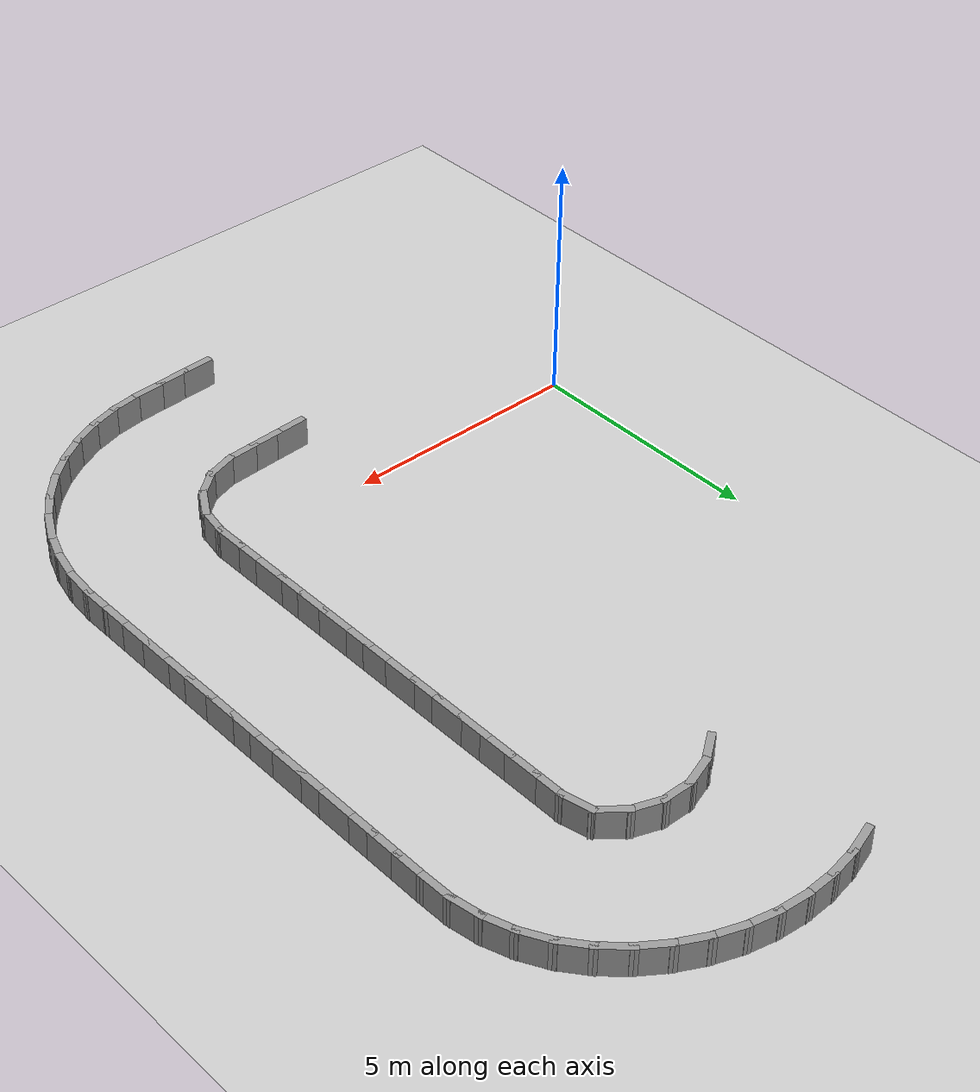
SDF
<sdf version="1.7">
 <world name="default">
  <model name="ground_plane">
   <static>1</static>
   <link name="link">
    <collision name="collision">
     <geometry><plane><normal>0 0 1</normal><size>100 100</size></plane></geometry>
     <surface><friction><ode><mu>100</mu><mu2>50</mu2></ode></friction></surface>
    </collision>
    <visual name="visual">
     <cast_shadows>0</cast_shadows>
     <geometry><plane><normal>0 0 1</normal><size>100 100</size></plane></geometry>
     <material>
      <script><uri>file://media/materials/scripts/gazebo.material</uri><name>Gazebo/Grey</name></script>
     </material>
    </visual>
   </link>
  </model>
  <model name="rand_turn_09">
   <link name="Wall_22">
    <collision name="Wall_22_Collision">
     <geometry><box><size>0.7500 0.1500 0.6000</size></box></geometry>
     <pose>0 0 0.3000 0 -0 0</pose>
    </collision>
    <visual name="Wall_22_Visual">
     <pose>0 0 0.3000 0 -0 0</pose>
     <geometry><box><size>0.7500 0.1500 0.6000</size></box></geometry>
     <material>
      <script><uri>file://media/materials/scripts/gazebo.material</uri><name>Gazebo/Grey</name></script>
      <ambient>1 1 1 1</ambient>
     </material>
    </visual>
    <pose>5.3822 -1.7798 0 0 -0 0.04657</pose>
   </link>
   <link name="Wall_23">
    <collision name="Wall_23_Collision">
     <geometry><box><size>0.7500 0.1500 0.6000</size></box></geometry>
     <pose>0 0 0.3000 0 -0 0</pose>
    </collision>
    <visual name="Wall_23_Visual">
     <pose>0 0 0.3000 0 -0 0</pose>
     <geometry><box><size>0.7500 0.1500 0.6000</size></box></geometry>
     <material>
      <script><uri>file://media/materials/scripts/gazebo.material</uri><name>Gazebo/Grey</name></script>
      <ambient>1 1 1 1</ambient>
     </material>
    </visual>
    <pose>5.9816 -1.7519 0 0 -0 0.04657</pose>
   </link>
   <link name="Wall_24">
    <collision name="Wall_24_Collision">
     <geometry><box><size>0.7499 0.1500 0.6000</size></box></geometry>
     <pose>0 0 0.3000 0 -0 0</pose>
    </collision>
    <visual name="Wall_24_Visual">
     <pose>0 0 0.3000 0 -0 0</pose>
     <geometry><box><size>0.7499 0.1500 0.6000</size></box></geometry>
     <material>
      <script><uri>file://media/materials/scripts/gazebo.material</uri><name>Gazebo/Grey</name></script>
      <ambient>1 1 1 1</ambient>
     </material>
    </visual>
    <pose>6.5808 -1.7224 0 0 -0 0.05183</pose>
   </link>
   <link name="Wall_25">
    <collision name="Wall_25_Collision">
     <geometry><box><size>0.7467 0.1500 0.6000</size></box></geometry>
     <pose>0 0 0.3000 0 -0 0</pose>
    </collision>
    <visual name="Wall_25_Visual">
     <pose>0 0 0.3000 0 -0 0</pose>
     <geometry><box><size>0.7467 0.1500 0.6000</size></box></geometry>
     <material>
      <script><uri>file://media/materials/scripts/gazebo.material</uri><name>Gazebo/Grey</name></script>
      <ambient>1 1 1 1</ambient>
     </material>
    </visual>
    <pose>7.1662 -1.6213 0 0 -0 0.29063</pose>
   </link>
   <link name="Wall_26">
    <collision name="Wall_26_Collision">
     <geometry><box><size>0.7466 0.1500 0.6000</size></box></geometry>
     <pose>0 0 0.3000 0 -0 0</pose>
    </collision>
    <visual name="Wall_26_Visual">
     <pose>0 0 0.3000 0 -0 0</pose>
     <geometry><box><size>0.7466 0.1500 0.6000</size></box></geometry>
     <material>
      <script><uri>file://media/materials/scripts/gazebo.material</uri><name>Gazebo/Grey</name></script>
      <ambient>1 1 1 1</ambient>
     </material>
    </visual>
    <pose>7.6882 -1.3536 0 0 -0 0.65714</pose>
   </link>
   <link name="Wall_27">
    <collision name="Wall_27_Collision">
     <geometry><box><size>0.7466 0.1500 0.6000</size></box></geometry>
     <pose>0 0 0.3000 0 -0 0</pose>
    </collision>
    <visual name="Wall_27_Visual">
     <pose>0 0 0.3000 0 -0 0</pose>
     <geometry><box><size>0.7466 0.1500 0.6000</size></box></geometry>
     <material>
      <script><uri>file://media/materials/scripts/gazebo.material</uri><name>Gazebo/Grey</name></script>
      <ambient>1 1 1 1</ambient>
     </material>
    </visual>
    <pose>8.0797 -0.9167 0 0 -0 1.02326</pose>
   </link>
   <link name="Wall_28">
    <collision name="Wall_28_Collision">
     <geometry><box><size>0.7466 0.1500 0.6000</size></box></geometry>
     <pose>0 0 0.3000 0 -0 0</pose>
    </collision>
    <visual name="Wall_28_Visual">
     <pose>0 0 0.3000 0 -0 0</pose>
     <geometry><box><size>0.7466 0.1500 0.6000</size></box></geometry>
     <material>
      <script><uri>file://media/materials/scripts/gazebo.material</uri><name>Gazebo/Grey</name></script>
      <ambient>1 1 1 1</ambient>
     </material>
    </visual>
    <pose>8.2887 -0.3686 0 0 -0 1.38976</pose>
   </link>
   <link name="Wall_29">
    <collision name="Wall_29_Collision">
     <geometry><box><size>0.7500 0.1500 0.6000</size></box></geometry>
     <pose>0 0 0.3000 0 -0 0</pose>
    </collision>
    <visual name="Wall_29_Visual">
     <pose>0 0 0.3000 0 -0 0</pose>
     <geometry><box><size>0.7500 0.1500 0.6000</size></box></geometry>
     <material>
      <script><uri>file://media/materials/scripts/gazebo.material</uri><name>Gazebo/Grey</name></script>
      <ambient>1 1 1 1</ambient>
     </material>
    </visual>
    <pose>8.3423 0.2248 0 0 -0 1.57105</pose>
   </link>
   <link name="Wall_30">
    <collision name="Wall_30_Collision">
     <geometry><box><size>0.7500 0.1500 0.6000</size></box></geometry>
     <pose>0 0 0.3000 0 -0 0</pose>
    </collision>
    <visual name="Wall_30_Visual">
     <pose>0 0 0.3000 0 -0 0</pose>
     <geometry><box><size>0.7500 0.1500 0.6000</size></box></geometry>
     <material>
      <script><uri>file://media/materials/scripts/gazebo.material</uri><name>Gazebo/Grey</name></script>
      <ambient>1 1 1 1</ambient>
     </material>
    </visual>
    <pose>8.3422 0.8248 0 0 -0 1.57086</pose>
   </link>
   <link name="Wall_31">
    <collision name="Wall_31_Collision">
     <geometry><box><size>0.7500 0.1500 0.6000</size></box></geometry>
     <pose>0 0 0.3000 0 -0 0</pose>
    </collision>
    <visual name="Wall_31_Visual">
     <pose>0 0 0.3000 0 -0 0</pose>
     <geometry><box><size>0.7500 0.1500 0.6000</size></box></geometry>
     <material>
      <script><uri>file://media/materials/scripts/gazebo.material</uri><name>Gazebo/Grey</name></script>
      <ambient>1 1 1 1</ambient>
     </material>
    </visual>
    <pose>8.3422 1.4248 0 0 -0 1.57086</pose>
   </link>
   <link name="Wall_32">
    <collision name="Wall_32_Collision">
     <geometry><box><size>0.7500 0.1500 0.6000</size></box></geometry>
     <pose>0 0 0.3000 0 -0 0</pose>
    </collision>
    <visual name="Wall_32_Visual">
     <pose>0 0 0.3000 0 -0 0</pose>
     <geometry><box><size>0.7500 0.1500 0.6000</size></box></geometry>
     <material>
      <script><uri>file://media/materials/scripts/gazebo.material</uri><name>Gazebo/Grey</name></script>
      <ambient>1 1 1 1</ambient>
     </material>
    </visual>
    <pose>8.3421 2.0248 0 0 -0 1.57086</pose>
   </link>
   <link name="Wall_33">
    <collision name="Wall_33_Collision">
     <geometry><box><size>0.7500 0.1500 0.6000</size></box></geometry>
     <pose>0 0 0.3000 0 -0 0</pose>
    </collision>
    <visual name="Wall_33_Visual">
     <pose>0 0 0.3000 0 -0 0</pose>
     <geometry><box><size>0.7500 0.1500 0.6000</size></box></geometry>
     <material>
      <script><uri>file://media/materials/scripts/gazebo.material</uri><name>Gazebo/Grey</name></script>
      <ambient>1 1 1 1</ambient>
     </material>
    </visual>
    <pose>8.3421 2.6248 0 0 -0 1.57086</pose>
   </link>
   <link name="Wall_34">
    <collision name="Wall_34_Collision">
     <geometry><box><size>0.7500 0.1500 0.6000</size></box></geometry>
     <pose>0 0 0.3000 0 -0 0</pose>
    </collision>
    <visual name="Wall_34_Visual">
     <pose>0 0 0.3000 0 -0 0</pose>
     <geometry><box><size>0.7500 0.1500 0.6000</size></box></geometry>
     <material>
      <script><uri>file://media/materials/scripts/gazebo.material</uri><name>Gazebo/Grey</name></script>
      <ambient>1 1 1 1</ambient>
     </material>
    </visual>
    <pose>8.3421 3.2248 0 0 -0 1.57086</pose>
   </link>
   <link name="Wall_35">
    <collision name="Wall_35_Collision">
     <geometry><box><size>0.7500 0.1500 0.6000</size></box></geometry>
     <pose>0 0 0.3000 0 -0 0</pose>
    </collision>
    <visual name="Wall_35_Visual">
     <pose>0 0 0.3000 0 -0 0</pose>
     <geometry><box><size>0.7500 0.1500 0.6000</size></box></geometry>
     <material>
      <script><uri>file://media/materials/scripts/gazebo.material</uri><name>Gazebo/Grey</name></script>
      <ambient>1 1 1 1</ambient>
     </material>
    </visual>
    <pose>8.3420 3.8248 0 0 -0 1.57086</pose>
   </link>
   <link name="Wall_36">
    <collision name="Wall_36_Collision">
     <geometry><box><size>0.7500 0.1500 0.6000</size></box></geometry>
     <pose>0 0 0.3000 0 -0 0</pose>
    </collision>
    <visual name="Wall_36_Visual">
     <pose>0 0 0.3000 0 -0 0</pose>
     <geometry><box><size>0.7500 0.1500 0.6000</size></box></geometry>
     <material>
      <script><uri>file://media/materials/scripts/gazebo.material</uri><name>Gazebo/Grey</name></script>
      <ambient>1 1 1 1</ambient>
     </material>
    </visual>
    <pose>8.3420 4.4248 0 0 -0 1.57086</pose>
   </link>
   <link name="Wall_37">
    <collision name="Wall_37_Collision">
     <geometry><box><size>0.7500 0.1500 0.6000</size></box></geometry>
     <pose>0 0 0.3000 0 -0 0</pose>
    </collision>
    <visual name="Wall_37_Visual">
     <pose>0 0 0.3000 0 -0 0</pose>
     <geometry><box><size>0.7500 0.1500 0.6000</size></box></geometry>
     <material>
      <script><uri>file://media/materials/scripts/gazebo.material</uri><name>Gazebo/Grey</name></script>
      <ambient>1 1 1 1</ambient>
     </material>
    </visual>
    <pose>8.3420 5.0248 0 0 -0 1.57086</pose>
   </link>
   <link name="Wall_38">
    <collision name="Wall_38_Collision">
     <geometry><box><size>0.7500 0.1500 0.6000</size></box></geometry>
     <pose>0 0 0.3000 0 -0 0</pose>
    </collision>
    <visual name="Wall_38_Visual">
     <pose>0 0 0.3000 0 -0 0</pose>
     <geometry><box><size>0.7500 0.1500 0.6000</size></box></geometry>
     <material>
      <script><uri>file://media/materials/scripts/gazebo.material</uri><name>Gazebo/Grey</name></script>
      <ambient>1 1 1 1</ambient>
     </material>
    </visual>
    <pose>8.3419 5.6248 0 0 -0 1.57086</pose>
   </link>
   <link name="Wall_39">
    <collision name="Wall_39_Collision">
     <geometry><box><size>0.7500 0.1500 0.6000</size></box></geometry>
     <pose>0 0 0.3000 0 -0 0</pose>
    </collision>
    <visual name="Wall_39_Visual">
     <pose>0 0 0.3000 0 -0 0</pose>
     <geometry><box><size>0.7500 0.1500 0.6000</size></box></geometry>
     <material>
      <script><uri>file://media/materials/scripts/gazebo.material</uri><name>Gazebo/Grey</name></script>
      <ambient>1 1 1 1</ambient>
     </material>
    </visual>
    <pose>8.3419 6.2248 0 0 -0 1.57086</pose>
   </link>
   <link name="Wall_40">
    <collision name="Wall_40_Collision">
     <geometry><box><size>0.7500 0.1500 0.6000</size></box></geometry>
     <pose>0 0 0.3000 0 -0 0</pose>
    </collision>
    <visual name="Wall_40_Visual">
     <pose>0 0 0.3000 0 -0 0</pose>
     <geometry><box><size>0.7500 0.1500 0.6000</size></box></geometry>
     <material>
      <script><uri>file://media/materials/scripts/gazebo.material</uri><name>Gazebo/Grey</name></script>
      <ambient>1 1 1 1</ambient>
     </material>
    </visual>
    <pose>8.3418 6.8248 0 0 -0 1.57086</pose>
   </link>
   <link name="Wall_41">
    <collision name="Wall_41_Collision">
     <geometry><box><size>0.7500 0.1500 0.6000</size></box></geometry>
     <pose>0 0 0.3000 0 -0 0</pose>
    </collision>
    <visual name="Wall_41_Visual">
     <pose>0 0 0.3000 0 -0 0</pose>
     <geometry><box><size>0.7500 0.1500 0.6000</size></box></geometry>
     <material>
      <script><uri>file://media/materials/scripts/gazebo.material</uri><name>Gazebo/Grey</name></script>
      <ambient>1 1 1 1</ambient>
     </material>
    </visual>
    <pose>8.3418 7.4248 0 0 -0 1.57086</pose>
   </link>
   <link name="Wall_42">
    <collision name="Wall_42_Collision">
     <geometry><box><size>0.7500 0.1500 0.6000</size></box></geometry>
     <pose>0 0 0.3000 0 -0 0</pose>
    </collision>
    <visual name="Wall_42_Visual">
     <pose>0 0 0.3000 0 -0 0</pose>
     <geometry><box><size>0.7500 0.1500 0.6000</size></box></geometry>
     <material>
      <script><uri>file://media/materials/scripts/gazebo.material</uri><name>Gazebo/Grey</name></script>
      <ambient>1 1 1 1</ambient>
     </material>
    </visual>
    <pose>8.3418 8.0248 0 0 -0 1.57086</pose>
   </link>
   <link name="Wall_43">
    <collision name="Wall_43_Collision">
     <geometry><box><size>0.7500 0.1500 0.6000</size></box></geometry>
     <pose>0 0 0.3000 0 -0 0</pose>
    </collision>
    <visual name="Wall_43_Visual">
     <pose>0 0 0.3000 0 -0 0</pose>
     <geometry><box><size>0.7500 0.1500 0.6000</size></box></geometry>
     <material>
      <script><uri>file://media/materials/scripts/gazebo.material</uri><name>Gazebo/Grey</name></script>
      <ambient>1 1 1 1</ambient>
     </material>
    </visual>
    <pose>8.3417 8.6248 0 0 -0 1.57086</pose>
   </link>
   <link name="Wall_44">
    <collision name="Wall_44_Collision">
     <geometry><box><size>0.7390 0.1500 0.6000</size></box></geometry>
     <pose>0 0 0.3000 0 -0 0</pose>
    </collision>
    <visual name="Wall_44_Visual">
     <pose>0 0 0.3000 0 -0 0</pose>
     <geometry><box><size>0.7390 0.1500 0.6000</size></box></geometry>
     <material>
      <script><uri>file://media/materials/scripts/gazebo.material</uri><name>Gazebo/Grey</name></script>
      <ambient>1 1 1 1</ambient>
     </material>
    </visual>
    <pose>8.2764 9.2120 0 0 -0 1.79442</pose>
   </link>
   <link name="Wall_45">
    <collision name="Wall_45_Collision">
     <geometry><box><size>0.7448 0.1500 0.6000</size></box></geometry>
     <pose>0 0 0.3000 0 -0 0</pose>
    </collision>
    <visual name="Wall_45_Visual">
     <pose>0 0 0.3000 0 -0 0</pose>
     <geometry><box><size>0.7448 0.1500 0.6000</size></box></geometry>
     <material>
      <script><uri>file://media/materials/scripts/gazebo.material</uri><name>Gazebo/Grey</name></script>
      <ambient>1 1 1 1</ambient>
     </material>
    </visual>
    <pose>7.9837 9.6908 0 0 -0 2.44117</pose>
   </link>
   <link name="Wall_46">
    <collision name="Wall_46_Collision">
     <geometry><box><size>0.7472 0.1500 0.6000</size></box></geometry>
     <pose>0 0 0.3000 0 -0 0</pose>
    </collision>
    <visual name="Wall_46_Visual">
     <pose>0 0 0.3000 0 -0 0</pose>
     <geometry><box><size>0.7472 0.1500 0.6000</size></box></geometry>
     <material>
      <script><uri>file://media/materials/scripts/gazebo.material</uri><name>Gazebo/Grey</name></script>
      <ambient>1 1 1 1</ambient>
     </material>
    </visual>
    <pose>7.4751 9.9829 0 0 -0 2.79888</pose>
   </link>
   <link name="Wall_47">
    <collision name="Wall_47_Collision">
     <geometry><box><size>0.7472 0.1500 0.6000</size></box></geometry>
     <pose>0 0 0.3000 0 -0 0</pose>
    </collision>
    <visual name="Wall_47_Visual">
     <pose>0 0 0.3000 0 -0 0</pose>
     <geometry><box><size>0.7472 0.1500 0.6000</size></box></geometry>
     <material>
      <script><uri>file://media/materials/scripts/gazebo.material</uri><name>Gazebo/Grey</name></script>
      <ambient>1 1 1 1</ambient>
     </material>
    </visual>
    <pose>6.8953 10.0859 0 0 -0 3.13249</pose>
   </link>
   <link name="Wall_48">
    <collision name="Wall_48_Collision">
     <geometry><box><size>0.7472 0.1500 0.6000</size></box></geometry>
     <pose>0 0 0.3000 0 -0 0</pose>
    </collision>
    <visual name="Wall_48_Visual">
     <pose>0 0 0.3000 0 -0 0</pose>
     <geometry><box><size>0.7472 0.1500 0.6000</size></box></geometry>
     <material>
      <script><uri>file://media/materials/scripts/gazebo.material</uri><name>Gazebo/Grey</name></script>
      <ambient>1 1 1 1</ambient>
     </material>
    </visual>
    <pose>6.3138 9.9933 0 0 -0 -2.81664</pose>
   </link>
   <link name="Wall_49">
    <collision name="Wall_49_Collision">
     <geometry><box><size>0.7491 0.1500 0.6000</size></box></geometry>
     <pose>0 0 0.3000 0 -0 0</pose>
    </collision>
    <visual name="Wall_49_Visual">
     <pose>0 0 0.3000 0 -0 0</pose>
     <geometry><box><size>0.7491 0.1500 0.6000</size></box></geometry>
     <material>
      <script><uri>file://media/materials/scripts/gazebo.material</uri><name>Gazebo/Grey</name></script>
      <ambient>1 1 1 1</ambient>
     </material>
    </visual>
    <pose>5.7865 9.7246 0 0 -0 -2.52444</pose>
   </link>
   <link name="Wall_85">
    <collision name="Wall_85_Collision">
     <geometry><box><size>0.7500 0.1500 0.6000</size></box></geometry>
     <pose>0 0 0.3000 0 -0 0</pose>
    </collision>
    <visual name="Wall_85_Visual">
     <pose>0 0 0.3000 0 -0 0</pose>
     <geometry><box><size>0.7500 0.1500 0.6000</size></box></geometry>
     <material>
      <script><uri>file://media/materials/scripts/gazebo.material</uri><name>Gazebo/Grey</name></script>
      <ambient>1 1 1 1</ambient>
     </material>
    </visual>
    <pose>5.5142 -4.6118 0 0 -0 0.04657</pose>
   </link>
   <link name="Wall_86">
    <collision name="Wall_86_Collision">
     <geometry><box><size>0.7500 0.1500 0.6000</size></box></geometry>
     <pose>0 0 0.3000 0 -0 0</pose>
    </collision>
    <visual name="Wall_86_Visual">
     <pose>0 0 0.3000 0 -0 0</pose>
     <geometry><box><size>0.7500 0.1500 0.6000</size></box></geometry>
     <material>
      <script><uri>file://media/materials/scripts/gazebo.material</uri><name>Gazebo/Grey</name></script>
      <ambient>1 1 1 1</ambient>
     </material>
    </visual>
    <pose>6.1136 -4.5839 0 0 -0 0.04657</pose>
   </link>
   <link name="Wall_87">
    <collision name="Wall_87_Collision">
     <geometry><box><size>0.7500 0.1500 0.6000</size></box></geometry>
     <pose>0 0 0.3000 0 -0 0</pose>
    </collision>
    <visual name="Wall_87_Visual">
     <pose>0 0 0.3000 0 -0 0</pose>
     <geometry><box><size>0.7500 0.1500 0.6000</size></box></geometry>
     <material>
      <script><uri>file://media/materials/scripts/gazebo.material</uri><name>Gazebo/Grey</name></script>
      <ambient>1 1 1 1</ambient>
     </material>
    </visual>
    <pose>6.7129 -4.5552 0 0 -0 0.04922</pose>
   </link>
   <link name="Wall_88">
    <collision name="Wall_88_Collision">
     <geometry><box><size>0.7495 0.1500 0.6000</size></box></geometry>
     <pose>0 0 0.3000 0 -0 0</pose>
    </collision>
    <visual name="Wall_88_Visual">
     <pose>0 0 0.3000 0 -0 0</pose>
     <geometry><box><size>0.7495 0.1500 0.6000</size></box></geometry>
     <material>
      <script><uri>file://media/materials/scripts/gazebo.material</uri><name>Gazebo/Grey</name></script>
      <ambient>1 1 1 1</ambient>
     </material>
    </visual>
    <pose>7.3095 -4.4998 0 0 -0 0.13589</pose>
   </link>
   <link name="Wall_89">
    <collision name="Wall_89_Collision">
     <geometry><box><size>0.7495 0.1500 0.6000</size></box></geometry>
     <pose>0 0 0.3000 0 -0 0</pose>
    </collision>
    <visual name="Wall_89_Visual">
     <pose>0 0 0.3000 0 -0 0</pose>
     <geometry><box><size>0.7495 0.1500 0.6000</size></box></geometry>
     <material>
      <script><uri>file://media/materials/scripts/gazebo.material</uri><name>Gazebo/Grey</name></script>
      <ambient>1 1 1 1</ambient>
     </material>
    </visual>
    <pose>7.8954 -4.3793 0 0 -0 0.26986</pose>
   </link>
   <link name="Wall_90">
    <collision name="Wall_90_Collision">
     <geometry><box><size>0.7496 0.1500 0.6000</size></box></geometry>
     <pose>0 0 0.3000 0 -0 0</pose>
    </collision>
    <visual name="Wall_90_Visual">
     <pose>0 0 0.3000 0 -0 0</pose>
     <geometry><box><size>0.7496 0.1500 0.6000</size></box></geometry>
     <material>
      <script><uri>file://media/materials/scripts/gazebo.material</uri><name>Gazebo/Grey</name></script>
      <ambient>1 1 1 1</ambient>
     </material>
    </visual>
    <pose>8.4600 -4.1815 0 0 -0 0.40391</pose>
   </link>
   <link name="Wall_91">
    <collision name="Wall_91_Collision">
     <geometry><box><size>0.7496 0.1500 0.6000</size></box></geometry>
     <pose>0 0 0.3000 0 -0 0</pose>
    </collision>
    <visual name="Wall_91_Visual">
     <pose>0 0 0.3000 0 -0 0</pose>
     <geometry><box><size>0.7496 0.1500 0.6000</size></box></geometry>
     <material>
      <script><uri>file://media/materials/scripts/gazebo.material</uri><name>Gazebo/Grey</name></script>
      <ambient>1 1 1 1</ambient>
     </material>
    </visual>
    <pose>8.9930 -3.9100 0 0 -0 0.53859</pose>
   </link>
   <link name="Wall_92">
    <collision name="Wall_92_Collision">
     <geometry><box><size>0.7495 0.1500 0.6000</size></box></geometry>
     <pose>0 0 0.3000 0 -0 0</pose>
    </collision>
    <visual name="Wall_92_Visual">
     <pose>0 0 0.3000 0 -0 0</pose>
     <geometry><box><size>0.7495 0.1500 0.6000</size></box></geometry>
     <material>
      <script><uri>file://media/materials/scripts/gazebo.material</uri><name>Gazebo/Grey</name></script>
      <ambient>1 1 1 1</ambient>
     </material>
    </visual>
    <pose>9.4848 -3.5694 0 0 -0 0.67280</pose>
   </link>
   <link name="Wall_93">
    <collision name="Wall_93_Collision">
     <geometry><box><size>0.7495 0.1500 0.6000</size></box></geometry>
     <pose>0 0 0.3000 0 -0 0</pose>
    </collision>
    <visual name="Wall_93_Visual">
     <pose>0 0 0.3000 0 -0 0</pose>
     <geometry><box><size>0.7495 0.1500 0.6000</size></box></geometry>
     <material>
      <script><uri>file://media/materials/scripts/gazebo.material</uri><name>Gazebo/Grey</name></script>
      <ambient>1 1 1 1</ambient>
     </material>
    </visual>
    <pose>9.9266 -3.1661 0 0 -0 0.80685</pose>
   </link>
   <link name="Wall_94">
    <collision name="Wall_94_Collision">
     <geometry><box><size>0.7495 0.1500 0.6000</size></box></geometry>
     <pose>0 0 0.3000 0 -0 0</pose>
    </collision>
    <visual name="Wall_94_Visual">
     <pose>0 0 0.3000 0 -0 0</pose>
     <geometry><box><size>0.7495 0.1500 0.6000</size></box></geometry>
     <material>
      <script><uri>file://media/materials/scripts/gazebo.material</uri><name>Gazebo/Grey</name></script>
      <ambient>1 1 1 1</ambient>
     </material>
    </visual>
    <pose>10.3105 -2.7074 0 0 -0 0.94090</pose>
   </link>
   <link name="Wall_95">
    <collision name="Wall_95_Collision">
     <geometry><box><size>0.7495 0.1500 0.6000</size></box></geometry>
     <pose>0 0 0.3000 0 -0 0</pose>
    </collision>
    <visual name="Wall_95_Visual">
     <pose>0 0 0.3000 0 -0 0</pose>
     <geometry><box><size>0.7495 0.1500 0.6000</size></box></geometry>
     <material>
      <script><uri>file://media/materials/scripts/gazebo.material</uri><name>Gazebo/Grey</name></script>
      <ambient>1 1 1 1</ambient>
     </material>
    </visual>
    <pose>10.6297 -2.2016 0 0 -0 1.07495</pose>
   </link>
   <link name="Wall_96">
    <collision name="Wall_96_Collision">
     <geometry><box><size>0.7495 0.1500 0.6000</size></box></geometry>
     <pose>0 0 0.3000 0 -0 0</pose>
    </collision>
    <visual name="Wall_96_Visual">
     <pose>0 0 0.3000 0 -0 0</pose>
     <geometry><box><size>0.7495 0.1500 0.6000</size></box></geometry>
     <material>
      <script><uri>file://media/materials/scripts/gazebo.material</uri><name>Gazebo/Grey</name></script>
      <ambient>1 1 1 1</ambient>
     </material>
    </visual>
    <pose>10.8784 -1.6576 0 0 -0 1.20900</pose>
   </link>
   <link name="Wall_97">
    <collision name="Wall_97_Collision">
     <geometry><box><size>0.7495 0.1500 0.6000</size></box></geometry>
     <pose>0 0 0.3000 0 -0 0</pose>
    </collision>
    <visual name="Wall_97_Visual">
     <pose>0 0 0.3000 0 -0 0</pose>
     <geometry><box><size>0.7495 0.1500 0.6000</size></box></geometry>
     <material>
      <script><uri>file://media/materials/scripts/gazebo.material</uri><name>Gazebo/Grey</name></script>
      <ambient>1 1 1 1</ambient>
     </material>
    </visual>
    <pose>11.0522 -1.0852 0 0 -0 1.34305</pose>
   </link>
   <link name="Wall_98">
    <collision name="Wall_98_Collision">
     <geometry><box><size>0.7495 0.1500 0.6000</size></box></geometry>
     <pose>0 0 0.3000 0 -0 0</pose>
    </collision>
    <visual name="Wall_98_Visual">
     <pose>0 0 0.3000 0 -0 0</pose>
     <geometry><box><size>0.7495 0.1500 0.6000</size></box></geometry>
     <material>
      <script><uri>file://media/materials/scripts/gazebo.material</uri><name>Gazebo/Grey</name></script>
      <ambient>1 1 1 1</ambient>
     </material>
    </visual>
    <pose>11.1479 -0.4948 0 0 -0 1.47714</pose>
   </link>
   <link name="Wall_99">
    <collision name="Wall_99_Collision">
     <geometry><box><size>0.7500 0.1500 0.6000</size></box></geometry>
     <pose>0 0 0.3000 0 -0 0</pose>
    </collision>
    <visual name="Wall_99_Visual">
     <pose>0 0 0.3000 0 -0 0</pose>
     <geometry><box><size>0.7500 0.1500 0.6000</size></box></geometry>
     <material>
      <script><uri>file://media/materials/scripts/gazebo.material</uri><name>Gazebo/Grey</name></script>
      <ambient>1 1 1 1</ambient>
     </material>
    </visual>
    <pose>11.1767 0.1037 0 0 -0 1.56841</pose>
   </link>
   <link name="Wall_100">
    <collision name="Wall_100_Collision">
     <geometry><box><size>0.7500 0.1500 0.6000</size></box></geometry>
     <pose>0 0 0.3000 0 -0 0</pose>
    </collision>
    <visual name="Wall_100_Visual">
     <pose>0 0 0.3000 0 -0 0</pose>
     <geometry><box><size>0.7500 0.1500 0.6000</size></box></geometry>
     <material>
      <script><uri>file://media/materials/scripts/gazebo.material</uri><name>Gazebo/Grey</name></script>
      <ambient>1 1 1 1</ambient>
     </material>
    </visual>
    <pose>11.1773 0.7037 0 0 -0 1.57086</pose>
   </link>
   <link name="Wall_101">
    <collision name="Wall_101_Collision">
     <geometry><box><size>0.7500 0.1500 0.6000</size></box></geometry>
     <pose>0 0 0.3000 0 -0 0</pose>
    </collision>
    <visual name="Wall_101_Visual">
     <pose>0 0 0.3000 0 -0 0</pose>
     <geometry><box><size>0.7500 0.1500 0.6000</size></box></geometry>
     <material>
      <script><uri>file://media/materials/scripts/gazebo.material</uri><name>Gazebo/Grey</name></script>
      <ambient>1 1 1 1</ambient>
     </material>
    </visual>
    <pose>11.1773 1.3037 0 0 -0 1.57086</pose>
   </link>
   <link name="Wall_102">
    <collision name="Wall_102_Collision">
     <geometry><box><size>0.7500 0.1500 0.6000</size></box></geometry>
     <pose>0 0 0.3000 0 -0 0</pose>
    </collision>
    <visual name="Wall_102_Visual">
     <pose>0 0 0.3000 0 -0 0</pose>
     <geometry><box><size>0.7500 0.1500 0.6000</size></box></geometry>
     <material>
      <script><uri>file://media/materials/scripts/gazebo.material</uri><name>Gazebo/Grey</name></script>
      <ambient>1 1 1 1</ambient>
     </material>
    </visual>
    <pose>11.1773 1.9037 0 0 -0 1.57086</pose>
   </link>
   <link name="Wall_103">
    <collision name="Wall_103_Collision">
     <geometry><box><size>0.7500 0.1500 0.6000</size></box></geometry>
     <pose>0 0 0.3000 0 -0 0</pose>
    </collision>
    <visual name="Wall_103_Visual">
     <pose>0 0 0.3000 0 -0 0</pose>
     <geometry><box><size>0.7500 0.1500 0.6000</size></box></geometry>
     <material>
      <script><uri>file://media/materials/scripts/gazebo.material</uri><name>Gazebo/Grey</name></script>
      <ambient>1 1 1 1</ambient>
     </material>
    </visual>
    <pose>11.1772 2.5037 0 0 -0 1.57086</pose>
   </link>
   <link name="Wall_104">
    <collision name="Wall_104_Collision">
     <geometry><box><size>0.7500 0.1500 0.6000</size></box></geometry>
     <pose>0 0 0.3000 0 -0 0</pose>
    </collision>
    <visual name="Wall_104_Visual">
     <pose>0 0 0.3000 0 -0 0</pose>
     <geometry><box><size>0.7500 0.1500 0.6000</size></box></geometry>
     <material>
      <script><uri>file://media/materials/scripts/gazebo.material</uri><name>Gazebo/Grey</name></script>
      <ambient>1 1 1 1</ambient>
     </material>
    </visual>
    <pose>11.1772 3.1037 0 0 -0 1.57086</pose>
   </link>
   <link name="Wall_105">
    <collision name="Wall_105_Collision">
     <geometry><box><size>0.7500 0.1500 0.6000</size></box></geometry>
     <pose>0 0 0.3000 0 -0 0</pose>
    </collision>
    <visual name="Wall_105_Visual">
     <pose>0 0 0.3000 0 -0 0</pose>
     <geometry><box><size>0.7500 0.1500 0.6000</size></box></geometry>
     <material>
      <script><uri>file://media/materials/scripts/gazebo.material</uri><name>Gazebo/Grey</name></script>
      <ambient>1 1 1 1</ambient>
     </material>
    </visual>
    <pose>11.1772 3.7037 0 0 -0 1.57086</pose>
   </link>
   <link name="Wall_106">
    <collision name="Wall_106_Collision">
     <geometry><box><size>0.7500 0.1500 0.6000</size></box></geometry>
     <pose>0 0 0.3000 0 -0 0</pose>
    </collision>
    <visual name="Wall_106_Visual">
     <pose>0 0 0.3000 0 -0 0</pose>
     <geometry><box><size>0.7500 0.1500 0.6000</size></box></geometry>
     <material>
      <script><uri>file://media/materials/scripts/gazebo.material</uri><name>Gazebo/Grey</name></script>
      <ambient>1 1 1 1</ambient>
     </material>
    </visual>
    <pose>11.1771 4.3037 0 0 -0 1.57086</pose>
   </link>
   <link name="Wall_107">
    <collision name="Wall_107_Collision">
     <geometry><box><size>0.7500 0.1500 0.6000</size></box></geometry>
     <pose>0 0 0.3000 0 -0 0</pose>
    </collision>
    <visual name="Wall_107_Visual">
     <pose>0 0 0.3000 0 -0 0</pose>
     <geometry><box><size>0.7500 0.1500 0.6000</size></box></geometry>
     <material>
      <script><uri>file://media/materials/scripts/gazebo.material</uri><name>Gazebo/Grey</name></script>
      <ambient>1 1 1 1</ambient>
     </material>
    </visual>
    <pose>11.1771 4.9037 0 0 -0 1.57086</pose>
   </link>
   <link name="Wall_108">
    <collision name="Wall_108_Collision">
     <geometry><box><size>0.7500 0.1500 0.6000</size></box></geometry>
     <pose>0 0 0.3000 0 -0 0</pose>
    </collision>
    <visual name="Wall_108_Visual">
     <pose>0 0 0.3000 0 -0 0</pose>
     <geometry><box><size>0.7500 0.1500 0.6000</size></box></geometry>
     <material>
      <script><uri>file://media/materials/scripts/gazebo.material</uri><name>Gazebo/Grey</name></script>
      <ambient>1 1 1 1</ambient>
     </material>
    </visual>
    <pose>11.1771 5.5037 0 0 -0 1.57086</pose>
   </link>
   <link name="Wall_109">
    <collision name="Wall_109_Collision">
     <geometry><box><size>0.7500 0.1500 0.6000</size></box></geometry>
     <pose>0 0 0.3000 0 -0 0</pose>
    </collision>
    <visual name="Wall_109_Visual">
     <pose>0 0 0.3000 0 -0 0</pose>
     <geometry><box><size>0.7500 0.1500 0.6000</size></box></geometry>
     <material>
      <script><uri>file://media/materials/scripts/gazebo.material</uri><name>Gazebo/Grey</name></script>
      <ambient>1 1 1 1</ambient>
     </material>
    </visual>
    <pose>11.1770 6.1037 0 0 -0 1.57086</pose>
   </link>
   <link name="Wall_110">
    <collision name="Wall_110_Collision">
     <geometry><box><size>0.7500 0.1500 0.6000</size></box></geometry>
     <pose>0 0 0.3000 0 -0 0</pose>
    </collision>
    <visual name="Wall_110_Visual">
     <pose>0 0 0.3000 0 -0 0</pose>
     <geometry><box><size>0.7500 0.1500 0.6000</size></box></geometry>
     <material>
      <script><uri>file://media/materials/scripts/gazebo.material</uri><name>Gazebo/Grey</name></script>
      <ambient>1 1 1 1</ambient>
     </material>
    </visual>
    <pose>11.1770 6.7037 0 0 -0 1.57086</pose>
   </link>
   <link name="Wall_111">
    <collision name="Wall_111_Collision">
     <geometry><box><size>0.7500 0.1500 0.6000</size></box></geometry>
     <pose>0 0 0.3000 0 -0 0</pose>
    </collision>
    <visual name="Wall_111_Visual">
     <pose>0 0 0.3000 0 -0 0</pose>
     <geometry><box><size>0.7500 0.1500 0.6000</size></box></geometry>
     <material>
      <script><uri>file://media/materials/scripts/gazebo.material</uri><name>Gazebo/Grey</name></script>
      <ambient>1 1 1 1</ambient>
     </material>
    </visual>
    <pose>11.1769 7.3037 0 0 -0 1.57086</pose>
   </link>
   <link name="Wall_112">
    <collision name="Wall_112_Collision">
     <geometry><box><size>0.7500 0.1500 0.6000</size></box></geometry>
     <pose>0 0 0.3000 0 -0 0</pose>
    </collision>
    <visual name="Wall_112_Visual">
     <pose>0 0 0.3000 0 -0 0</pose>
     <geometry><box><size>0.7500 0.1500 0.6000</size></box></geometry>
     <material>
      <script><uri>file://media/materials/scripts/gazebo.material</uri><name>Gazebo/Grey</name></script>
      <ambient>1 1 1 1</ambient>
     </material>
    </visual>
    <pose>11.1769 7.9037 0 0 -0 1.57086</pose>
   </link>
   <link name="Wall_113">
    <collision name="Wall_113_Collision">
     <geometry><box><size>0.7500 0.1500 0.6000</size></box></geometry>
     <pose>0 0 0.3000 0 -0 0</pose>
    </collision>
    <visual name="Wall_113_Visual">
     <pose>0 0 0.3000 0 -0 0</pose>
     <geometry><box><size>0.7500 0.1500 0.6000</size></box></geometry>
     <material>
      <script><uri>file://media/materials/scripts/gazebo.material</uri><name>Gazebo/Grey</name></script>
      <ambient>1 1 1 1</ambient>
     </material>
    </visual>
    <pose>11.1769 8.5037 0 0 -0 1.57086</pose>
   </link>
   <link name="Wall_114">
    <collision name="Wall_114_Collision">
     <geometry><box><size>0.7497 0.1500 0.6000</size></box></geometry>
     <pose>0 0 0.3000 0 -0 0</pose>
    </collision>
    <visual name="Wall_114_Visual">
     <pose>0 0 0.3000 0 -0 0</pose>
     <geometry><box><size>0.7497 0.1500 0.6000</size></box></geometry>
     <material>
      <script><uri>file://media/materials/scripts/gazebo.material</uri><name>Gazebo/Grey</name></script>
      <ambient>1 1 1 1</ambient>
     </material>
    </visual>
    <pose>11.1688 9.1034 0 0 -0 1.59774</pose>
   </link>
   <link name="Wall_115">
    <collision name="Wall_115_Collision">
     <geometry><box><size>0.7493 0.1500 0.6000</size></box></geometry>
     <pose>0 0 0.3000 0 -0 0</pose>
    </collision>
    <visual name="Wall_115_Visual">
     <pose>0 0 0.3000 0 -0 0</pose>
     <geometry><box><size>0.7493 0.1500 0.6000</size></box></geometry>
     <material>
      <script><uri>file://media/materials/scripts/gazebo.material</uri><name>Gazebo/Grey</name></script>
      <ambient>1 1 1 1</ambient>
     </material>
    </visual>
    <pose>11.1078 9.6981 0 0 -0 1.74808</pose>
   </link>
   <link name="Wall_116">
    <collision name="Wall_116_Collision">
     <geometry><box><size>0.7492 0.1500 0.6000</size></box></geometry>
     <pose>0 0 0.3000 0 -0 0</pose>
    </collision>
    <visual name="Wall_116_Visual">
     <pose>0 0 0.3000 0 -0 0</pose>
     <geometry><box><size>0.7492 0.1500 0.6000</size></box></geometry>
     <material>
      <script><uri>file://media/materials/scripts/gazebo.material</uri><name>Gazebo/Grey</name></script>
      <ambient>1 1 1 1</ambient>
     </material>
    </visual>
    <pose>10.9545 10.2753 0 0 -0 1.91293</pose>
   </link>
   <link name="Wall_117">
    <collision name="Wall_117_Collision">
     <geometry><box><size>0.7493 0.1500 0.6000</size></box></geometry>
     <pose>0 0 0.3000 0 -0 0</pose>
    </collision>
    <visual name="Wall_117_Visual">
     <pose>0 0 0.3000 0 -0 0</pose>
     <geometry><box><size>0.7493 0.1500 0.6000</size></box></geometry>
     <material>
      <script><uri>file://media/materials/scripts/gazebo.material</uri><name>Gazebo/Grey</name></script>
      <ambient>1 1 1 1</ambient>
     </material>
    </visual>
    <pose>10.7087 10.8196 0 0 -0 2.07693</pose>
   </link>
   <link name="Wall_118">
    <collision name="Wall_118_Collision">
     <geometry><box><size>0.7493 0.1500 0.6000</size></box></geometry>
     <pose>0 0 0.3000 0 -0 0</pose>
    </collision>
    <visual name="Wall_118_Visual">
     <pose>0 0 0.3000 0 -0 0</pose>
     <geometry><box><size>0.7493 0.1500 0.6000</size></box></geometry>
     <material>
      <script><uri>file://media/materials/scripts/gazebo.material</uri><name>Gazebo/Grey</name></script>
      <ambient>1 1 1 1</ambient>
     </material>
    </visual>
    <pose>10.3764 11.3158 0 0 -0 2.24479</pose>
   </link>
   <link name="Wall_119">
    <collision name="Wall_119_Collision">
     <geometry><box><size>0.7494 0.1500 0.6000</size></box></geometry>
     <pose>0 0 0.3000 0 -0 0</pose>
    </collision>
    <visual name="Wall_119_Visual">
     <pose>0 0 0.3000 0 -0 0</pose>
     <geometry><box><size>0.7494 0.1500 0.6000</size></box></geometry>
     <material>
      <script><uri>file://media/materials/scripts/gazebo.material</uri><name>Gazebo/Grey</name></script>
      <ambient>1 1 1 1</ambient>
     </material>
    </visual>
    <pose>9.9674 11.7513 0 0 -0 2.40490</pose>
   </link>
   <link name="Wall_120">
    <collision name="Wall_120_Collision">
     <geometry><box><size>0.7495 0.1500 0.6000</size></box></geometry>
     <pose>0 0 0.3000 0 -0 0</pose>
    </collision>
    <visual name="Wall_120_Visual">
     <pose>0 0 0.3000 0 -0 0</pose>
     <geometry><box><size>0.7495 0.1500 0.6000</size></box></geometry>
     <material>
      <script><uri>file://media/materials/scripts/gazebo.material</uri><name>Gazebo/Grey</name></script>
      <ambient>1 1 1 1</ambient>
     </material>
    </visual>
    <pose>9.4985 12.1226 0 0 -0 2.53904</pose>
   </link>
   <link name="Wall_121">
    <collision name="Wall_121_Collision">
     <geometry><box><size>0.7496 0.1500 0.6000</size></box></geometry>
     <pose>0 0 0.3000 0 -0 0</pose>
    </collision>
    <visual name="Wall_121_Visual">
     <pose>0 0 0.3000 0 -0 0</pose>
     <geometry><box><size>0.7496 0.1500 0.6000</size></box></geometry>
     <material>
      <script><uri>file://media/materials/scripts/gazebo.material</uri><name>Gazebo/Grey</name></script>
      <ambient>1 1 1 1</ambient>
     </material>
    </visual>
    <pose>8.9846 12.4291 0 0 -0 2.66836</pose>
   </link>
   <link name="Wall_122">
    <collision name="Wall_122_Collision">
     <geometry><box><size>0.7496 0.1500 0.6000</size></box></geometry>
     <pose>0 0 0.3000 0 -0 0</pose>
    </collision>
    <visual name="Wall_122_Visual">
     <pose>0 0 0.3000 0 -0 0</pose>
     <geometry><box><size>0.7496 0.1500 0.6000</size></box></geometry>
     <material>
      <script><uri>file://media/materials/scripts/gazebo.material</uri><name>Gazebo/Grey</name></script>
      <ambient>1 1 1 1</ambient>
     </material>
    </visual>
    <pose>8.4355 12.6666 0 0 -0 2.79829</pose>
   </link>
   <link name="Wall_123">
    <collision name="Wall_123_Collision">
     <geometry><box><size>0.7496 0.1500 0.6000</size></box></geometry>
     <pose>0 0 0.3000 0 -0 0</pose>
    </collision>
    <visual name="Wall_123_Visual">
     <pose>0 0 0.3000 0 -0 0</pose>
     <geometry><box><size>0.7496 0.1500 0.6000</size></box></geometry>
     <material>
      <script><uri>file://media/materials/scripts/gazebo.material</uri><name>Gazebo/Grey</name></script>
      <ambient>1 1 1 1</ambient>
     </material>
    </visual>
    <pose>7.8602 12.8310 0 0 -0 2.92823</pose>
   </link>
   <link name="Wall_124">
    <collision name="Wall_124_Collision">
     <geometry><box><size>0.7495 0.1500 0.6000</size></box></geometry>
     <pose>0 0 0.3000 0 -0 0</pose>
    </collision>
    <visual name="Wall_124_Visual">
     <pose>0 0 0.3000 0 -0 0</pose>
     <geometry><box><size>0.7495 0.1500 0.6000</size></box></geometry>
     <material>
      <script><uri>file://media/materials/scripts/gazebo.material</uri><name>Gazebo/Grey</name></script>
      <ambient>1 1 1 1</ambient>
     </material>
    </visual>
    <pose>7.2685 12.9196 0 0 -0 3.05755</pose>
   </link>
   <link name="Wall_125">
    <collision name="Wall_125_Collision">
     <geometry><box><size>0.7495 0.1500 0.6000</size></box></geometry>
     <pose>0 0 0.3000 0 -0 0</pose>
    </collision>
    <visual name="Wall_125_Visual">
     <pose>0 0 0.3000 0 -0 0</pose>
     <geometry><box><size>0.7495 0.1500 0.6000</size></box></geometry>
     <material>
      <script><uri>file://media/materials/scripts/gazebo.material</uri><name>Gazebo/Grey</name></script>
      <ambient>1 1 1 1</ambient>
     </material>
    </visual>
    <pose>6.6704 12.9312 0 0 -0 -3.09631</pose>
   </link>
   <link name="Wall_126">
    <collision name="Wall_126_Collision">
     <geometry><box><size>0.7495 0.1500 0.6000</size></box></geometry>
     <pose>0 0 0.3000 0 -0 0</pose>
    </collision>
    <visual name="Wall_126_Visual">
     <pose>0 0 0.3000 0 -0 0</pose>
     <geometry><box><size>0.7495 0.1500 0.6000</size></box></geometry>
     <material>
      <script><uri>file://media/materials/scripts/gazebo.material</uri><name>Gazebo/Grey</name></script>
      <ambient>1 1 1 1</ambient>
     </material>
    </visual>
    <pose>6.0757 12.8656 0 0 -0 -2.96699</pose>
   </link>
   <link name="Wall_127">
    <collision name="Wall_127_Collision">
     <geometry><box><size>0.7496 0.1500 0.6000</size></box></geometry>
     <pose>0 0 0.3000 0 -0 0</pose>
    </collision>
    <visual name="Wall_127_Visual">
     <pose>0 0 0.3000 0 -0 0</pose>
     <geometry><box><size>0.7496 0.1500 0.6000</size></box></geometry>
     <material>
      <script><uri>file://media/materials/scripts/gazebo.material</uri><name>Gazebo/Grey</name></script>
      <ambient>1 1 1 1</ambient>
     </material>
    </visual>
    <pose>5.4944 12.7238 0 0 -0 -2.83767</pose>
   </link>
   <static>1</static>
  </model>
 </world>
</sdf>
